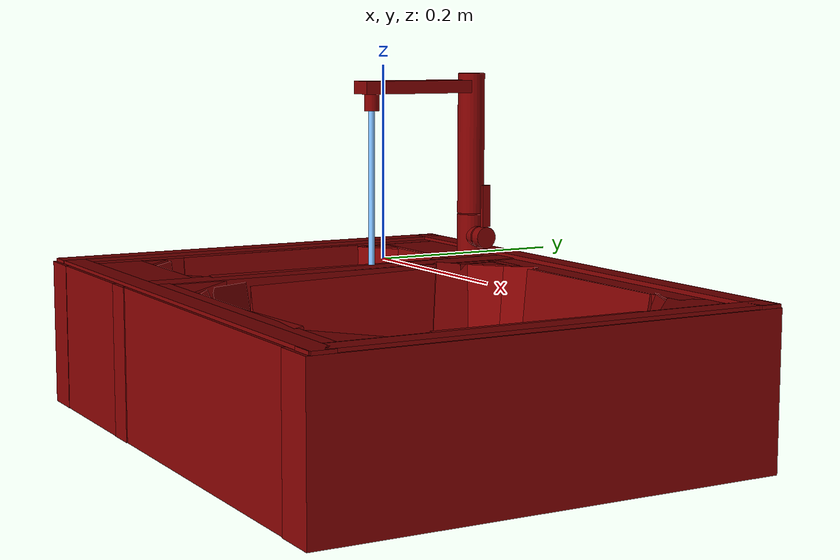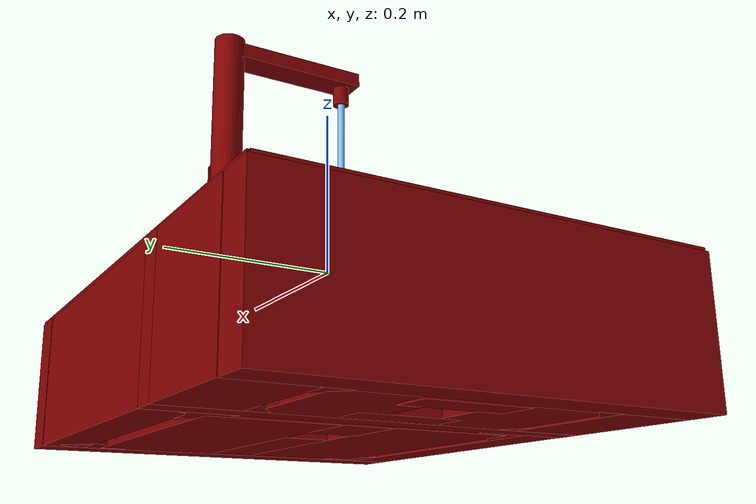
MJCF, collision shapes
<mujoco model="model">
  <compiler angle="radian"/>
  <asset>
    <mesh file="visuals/handle.obj" name="handle_vis"/>
    <mesh file="visuals/Body001.obj" name="Body001_vis"/>
    <mesh file="visuals/Funnel001.obj" name="Funnel001_vis"/>
    <mesh file="visuals/Funnel002.obj" name="Funnel002_vis"/>
    <mesh file="visuals/spout.obj" name="spout_vis"/>
    <texture file="visuals/T_BC001.png" name="Body001_material" type="2d"/>
    <material name="Body001_material" rgba="1 1 1 1.0" texture="Body001_material" shininess="0.4472135901451111" specular="0.7"/>
    <texture file="visuals/T_BC001.png" name="handle_material" type="2d"/>
    <material name="handle_material" rgba="1 1 1 1.0" texture="handle_material" shininess="0.4472135901451111" specular="0.7"/>
    <texture file="visuals/T_BC001.png" name="Funnel001_material" type="2d"/>
    <material name="Funnel001_material" rgba="1 1 1 1.0" texture="Funnel001_material" shininess="0.4472135901451111" specular="0.7"/>
    <texture file="visuals/T_BC001.png" name="Funnel002_material" type="2d"/>
    <material name="Funnel002_material" rgba="1 1 1 1.0" texture="Funnel002_material" shininess="0.4472135901451111" specular="0.7"/>
    <texture file="visuals/T_BC001.png" name="spout_material" type="2d"/>
    <material name="spout_material" rgba="1 1 1 1.0" texture="spout_material" shininess="0.4472135901451111" specular="0.7"/>
  </asset>
  <default>
    <default class="visual">
      <geom conaffinity="0" contype="0" group="1" type="mesh"/>
    </default>
    <default class="collision">
      <geom group="0" rgba="0.5 0 0 0.5"/>
    </default>
    <default class="spawn">
      <geom group="0" rgba="1 1 1 0.5" contype="0" conaffinity="0"/>
      <site group="0" rgba="1 1 1 0.5"/>
    </default>
    <default class="region">
      <geom group="1" conaffinity="0" contype="0" rgba="0 1 0 0"/>
    </default>
  </default>
  <worldbody>
    <body>
      <body name="object">
        <geom mesh="Body001_vis" type="mesh" solimp="0.998 0.998 0.001" solref="0.001 1" density="100" friction="0.95 0.3 0.1" class="visual" material="Body001_material"/>
        <geom class="collision" type="box" pos="-0.304379 -0.000304 -0.106134" size="0.021913282573223114 0.2506723701953888 0.0811813548207283" quat="1.0 0.0 0.0 0.0"/>
        <geom class="collision" type="box" pos="-0.111876 -0.000304 -0.106134" size="0.016419952735304832 0.2506723701953888 0.0811813548207283" quat="1.0 0.0 0.0 0.0"/>
        <geom class="collision" type="box" pos="0.302957 -0.000304 -0.106134" size="0.023097636178135872 0.2506723701953888 0.0811813548207283" quat="1.0 0.0 0.0 0.0"/>
        <geom class="collision" type="box" pos="-0.204967 0.205712 -0.106134" size="0.04517940804362297 0.07693134993314743 0.0811813622713089" quat="0.7071067094802856 0.0 0.0 0.7071068286895752"/>
        <geom class="collision" type="box" pos="-0.204967 -0.206061 -0.106134" size="0.04443860054016113 0.0776364728808403 0.0811813622713089" quat="0.7071067094802856 0.0 0.0 0.7071068286895752"/>
        <geom class="collision" type="box" pos="0.090095 -0.224436 -0.106134" size="0.02550148218870163 0.18988800048828125 0.0811813622713089" quat="0.7071067094802856 0.0 0.0 0.7071068286895752"/>
        <geom class="collision" type="box" pos="0.094487 0.224083 -0.106626" size="0.025845898315310478 0.19207030534744263 0.08068923652172089" quat="0.7071067094802856 0.0 0.0 0.7071068286895752"/>
        <geom class="collision" type="box" pos="-0.204967 0.089244 -0.167381" size="0.05919526889920235 0.0741795226931572 0.019816504791378975" quat="0.7071067094802856 0.0 0.0 0.7071068286895752"/>
        <geom class="collision" type="box" pos="-0.204967 -0.089389 -0.167429" size="0.059131599962711334 0.0741795226931572 0.019864585250616074" quat="0.7071067094802856 0.0 0.0 0.7071068286895752"/>
        <geom class="collision" type="box" pos="-0.258494 0.004606 -0.168118" size="0.05883987620472908 0.021634362637996674 0.02055344544351101" quat="0.7071067094802856 0.0 0.0 0.7071068286895752"/>
        <geom class="collision" type="box" pos="-0.153257 0.004606 -0.167577" size="0.05883987620472908 0.021164773032069206 0.020012594759464264" quat="0.7071067094802856 0.0 0.0 0.7071068286895752"/>
        <geom class="collision" type="box" pos="0.090382 0.105064 -0.167808" size="0.07577254623174667 0.17648708820343018 0.020243074744939804" quat="0.7071067094802856 0.0 0.0 0.7071068286895752"/>
        <geom class="collision" type="box" pos="0.090382 -0.106013 -0.167489" size="0.07656072825193405 0.17648708820343018 0.019924554973840714" quat="0.7071067094802856 0.0 0.0 0.7071068286895752"/>
        <geom class="collision" type="box" pos="0.160317 -0.001614 -0.167396" size="0.031455546617507935 0.10655160248279572 0.019831692799925804" quat="0.7071067094802856 0.0 0.0 0.7071068286895752"/>
        <geom class="collision" type="box" pos="-0.046030 -0.001614 -0.167695" size="0.031455546617507935 0.039754245430231094 0.020130664110183716" quat="0.7071067094802856 0.0 0.0 0.7071068286895752"/>
        <geom class="collision" type="cylinder" pos="-0.123388 0.182869 0.002697" size="0.015378177165985107 0.023764031007885933" quat="1.0 0.0 0.0 0.0"/>
        <geom class="collision" type="cylinder" pos="-0.108897 0.182934 0.001794" size="0.011896234005689621 0.004643584135919809" quat="0.7071014046669006 -0.002766991499811411 0.7071013450622559 0.002766991499811411"/>
        <geom class="collision" type="box" pos="-0.090559 0.172512 -0.106384" size="0.025845898315310478 0.005225156433880329 0.08093113452196121" quat="0.7071067094802856 0.0 0.0 0.7071068286895752"/>
        <geom class="collision" type="box" pos="-0.069393 0.193411 -0.106384" size="0.025845898315310478 0.005225156433880329 0.08093113452196121" quat="1.0 0.0 0.0 5.960464477539063e-08"/>
        <geom class="collision" type="box" pos="-0.059238 0.161474 -0.105100" size="0.025845900177955627 0.005225156433880329 0.07925937324762344" quat="0.9315856695175171 -0.10113897919654846 -0.03768659383058548 0.34712931513786316"/>
        <geom class="collision" type="box" pos="-0.077381 0.133009 -0.103124" size="0.02584589645266533 0.005225156433880329 0.07925937324762344" quat="0.7804167866706848 -0.12432725727558136 -0.024337567389011383 0.6122908592224121"/>
        <geom class="collision" type="box" pos="-0.085546 0.005067 -0.103557" size="0.11396775394678116 0.005225156433880329 0.07925938069820404" quat="0.7045438289642334 -0.0719207376241684 -0.07518203556537628 0.7019922137260437"/>
        <geom class="collision" type="box" pos="0.094780 -0.186623 -0.104684" size="0.11396775394678116 0.005225156433880329 0.07925937324762344" quat="0.005484840366989374 0.010454756207764149 0.08968508243560791 -0.9959002137184143"/>
        <geom class="collision" type="box" pos="-0.072224 -0.135508 -0.107208" size="0.02584589645266533 0.005225156433880329 0.07925937324762344" quat="0.5429361462593079 -0.057337481528520584 -0.08152171224355698 0.833838701248169"/>
        <geom class="collision" type="box" pos="-0.042236 -0.171922 -0.106157" size="0.025845898315310478 0.005225156433880329 0.07925937324762344" quat="0.2774260938167572 -0.04453260824084282 -0.09324575215578079 0.9551737308502197"/>
        <geom class="collision" type="box" pos="0.228654 -0.173251 -0.107208" size="0.02584589645266533 0.005225156433880329 0.07925937324762344" quat="0.20856431126594543 -0.017389820888638496 0.0981375053524971 -0.9729170203208923"/>
        <geom class="collision" type="box" pos="0.258637 -0.140643 -0.106157" size="0.02584589645266533 0.005225156433880329 0.07925937324762344" quat="0.48180389404296875 -0.03473207354545593 0.09732218086719513 -0.8701649904251099"/>
        <geom class="collision" type="box" pos="0.274674 0.005067 -0.103557" size="0.11396776139736176 0.005225156433880329 0.07925938069820404" quat="0.042465563863515854 -0.7042139172554016 -0.7072701454162598 0.04525955766439438"/>
        <geom class="collision" type="box" pos="0.259821 0.141856 -0.107345" size="0.025845900177955627 0.005225156433880329 0.07925937324762344" quat="0.8157275319099426 -0.07961252331733704 0.05996018275618553 -0.5697852373123169"/>
        <geom class="collision" type="box" pos="0.229422 0.174076 -0.106294" size="0.025845900177955627 0.005225156433880329 0.07925937324762344" quat="0.9456391334533691 -0.09174710512161255 0.04754364490509033 -0.30836451053619385"/>
        <geom class="collision" type="box" pos="0.081039 0.187262 -0.105135" size="0.11396776139736176 0.0052251568995416164 0.07925937324762344" quat="0.002029395429417491 -0.0021109217777848244 0.9961948394775391 -0.08710481226444244"/>
        <geom class="collision" type="box" pos="0.270427 0.186051 -0.106626" size="0.025845898315310478 0.04232998192310333 0.08068923652172089" quat="0.9190593957901001 0.0 0.0 0.3941190540790558"/>
        <geom class="collision" type="box" pos="0.262168 -0.190222 -0.106626" size="0.025845900177955627 0.04232998192310333 0.08068923652172089" quat="0.4444805085659027 0.0 0.0 0.8957885503768921"/>
        <geom class="collision" type="box" pos="-0.085656 -0.184257 -0.106626" size="0.025845898315310478 0.04232998192310333 0.08068923652172089" quat="0.9276973605155945 0.0 0.0 0.3733331561088562"/>
        <geom class="collision" type="box" pos="-0.091482 0.189328 -0.106626" size="0.025845900177955627 0.04232998192310333 0.08068923652172089" quat="0.9256194233894348 0.0 -0.0 -0.37845566868782043"/>
        <geom class="collision" type="box" pos="0.213245 0.181738 -0.102114" size="0.02584589645266533 0.0052251568995416164 0.07715897262096405" quat="0.9745601415634155 -0.09655645489692688 0.03680741414427757 -0.1988832950592041"/>
        <geom class="collision" type="box" pos="-0.028992 0.181154 -0.104021" size="0.025845900177955627 0.005225156433880329 0.07925937324762344" quat="0.9735565781593323 -0.09422709792852402 -0.052636709064245224 0.20134100317955017"/>
        <geom class="collision" type="box" pos="-0.207244 0.149444 -0.105003" size="0.04446038976311684 0.005225156433880329 0.07925935834646225" quat="0.002029395429417491 -0.0021109217777848244 0.9961948394775391 -0.08710481226444244"/>
        <geom class="collision" type="box" pos="-0.258622 0.129166 -0.105100" size="0.025845898315310478 0.005225156433880329 0.07925937324762344" quat="0.9061340093612671 -0.10344429314136505 -0.03080013394355774 0.40898874402046204"/>
        <geom class="collision" type="box" pos="-0.151035 0.138564 -0.106431" size="0.025845900177955627 0.005225156433880329 0.07925937324762344" quat="0.9296858310699463 -0.060102034360170364 0.029010016471147537 -0.3622574210166931"/>
        <geom class="collision" type="box" pos="-0.200535 -0.152085 -0.105003" size="0.04446038976311684 0.005225156433880329 0.07925935834646225" quat="0.08711718767881393 -0.9961850047111511 0.004906183574348688 0.0014157724799588323"/>
        <geom class="collision" type="box" pos="-0.148877 -0.132532 -0.105100" size="0.02584589645266533 0.005225156433880329 0.07925937324762344" quat="0.4025959074497223 -0.030070720240473747 0.10365870594978333 -0.9089924097061157"/>
        <geom class="collision" type="box" pos="-0.256586 -0.140414 -0.106431" size="0.025845900177955627 0.005225156433880329 0.07925937324762344" quat="0.3687969446182251 -0.029432643204927444 -0.059896212071180344 0.9271110892295837"/>
        <geom class="collision" type="box" pos="-0.133766 0.005067 -0.103557" size="0.14837190508842468 0.005225186236202717 0.07925985753536224" quat="0.042465563863515854 -0.7042139172554016 -0.7072701454162598 0.04525955766439438"/>
        <geom class="collision" type="box" pos="-0.277001 0.005067 -0.103557" size="0.11396775394678116 0.0052251568995416164 0.07925938069820404" quat="0.7069447636604309 -0.04441684111952782 -0.047575876116752625 0.7042675614356995"/>
        <geom class="collision" type="box" pos="-0.274660 -0.154304 -0.106626" size="0.011584443040192127 0.023624230176210403 0.08068923652172089" quat="0.9276973605155945 0.0 0.0 0.3733331561088562"/>
        <geom class="collision" type="box" pos="-0.134140 -0.156959 -0.106626" size="0.011584443040192127 0.023624230176210403 0.08068923652172089" quat="0.42179039120674133 0.0 0.0 0.9066933989524841"/>
        <geom class="collision" type="box" pos="-0.275678 0.153203 -0.106626" size="0.011584442108869553 0.023624230176210403 0.08068923652172089" quat="0.3680267930030823 0.0 0.0 0.9298151731491089"/>
        <geom class="collision" type="box" pos="-0.141354 0.155858 -0.106626" size="0.011584443040192127 0.023624230176210403 0.08068923652172089" quat="0.8962980508804321 0.0 0.0 0.4434520900249481"/>
        <geom class="collision" type="box" pos="0.001443 0.237160 -0.025704" size="0.3244405686855316 0.01222260482609272 0.004453789442777634" quat="1.0 0.0 0.0 0.0"/>
        <geom class="collision" type="box" pos="0.001443 -0.234191 -0.025704" size="0.3244405686855316 0.01222260482609272 0.004453789442777634" quat="1.0 0.0 0.0 0.0"/>
        <geom class="collision" type="box" pos="0.311455 -0.000167 -0.025704" size="0.24724873900413513 0.01222260482609272 0.004453789442777634" quat="0.7071067094802856 0.0 -0.0 -0.7071068286895752"/>
        <geom class="collision" type="box" pos="-0.312799 -0.000167 -0.025704" size="0.24724873900413513 0.01222260482609272 0.004453789442777634" quat="0.7071067094802856 0.0 -0.0 -0.7071068286895752"/>
        <body name="handle">
          <joint axis="1.0 0.0 0.0" pos="-0.095673 0.182996 0.001894" limited="true" name="handle_joint_hinge_0" type="hinge" range="-0.7853981633974483 0.7853981633974483" damping="1" frictionloss="1" armature=".01" stiffness="0.05"/>
          <joint axis="0.0 1.0 0.0" pos="-0.095673 0.182996 0.001894" limited="true" name="handle_joint_hinge_1" type="hinge" range="0.0 0.17453292519943295" damping="1" frictionloss="1" armature=".01" stiffness="0.05"/>
          <geom mesh="handle_vis" type="mesh" solimp="0.998 0.998 0.001" solref="0.001 1" density="100" friction="0.95 0.3 0.1" class="visual" material="handle_material"/>
          <geom class="collision" type="cylinder" pos="-0.095235 0.183051 0.001600" size="0.012242971919476986 0.005963981617242098" quat="0.7071014046669006 -0.002766991499811411 0.7071013450622559 0.002766991499811411"/>
          <geom class="collision" type="box" pos="-0.091400 0.182999 0.038001" size="0.0020829199347645044 0.005032389424741268 0.023850250989198685" quat="0.9999874830245972 0.0 -0.0 -0.005006327759474516"/>
        </body>
        <body name="Funnel001">
          <joint axis="0.0 0.0 1.0" pos="-0.205050 -0.000000 -0.165481" limited="true" name="Funnel001_joint" range="0.0 0.25" type="slide" damping="1" frictionloss="1" armature=".01" stiffness="0.05"/>
          <geom mesh="Funnel001_vis" type="mesh" solimp="0.998 0.998 0.001" solref="0.001 1" density="100" friction="0.95 0.3 0.1" class="visual" material="Funnel001_material"/>
          <geom class="collision" type="cylinder" pos="-0.204800 -0.000195 -0.162425" size="0.028490740805864334 0.009460891596972942" quat="1.0 0.0 0.0 0.0"/>
        </body>
        <body name="Funnel002">
          <joint axis="0.0 0.0 1.0" pos="0.023934 -0.000000 -0.165481" limited="true" name="Funnel002_joint" range="0.0 0.25" type="slide" damping="1" frictionloss="1" armature=".01" stiffness="0.05"/>
          <geom mesh="Funnel002_vis" type="mesh" solimp="0.998 0.998 0.001" solref="0.001 1" density="100" friction="0.95 0.3 0.1" class="visual" material="Funnel002_material"/>
          <geom class="collision" type="cylinder" pos="0.024025 -0.000195 -0.162425" size="0.028490740805864334 0.009460891596972942" quat="1.0 0.0 0.0 0.0"/>
        </body>
        <body name="spout">
          <joint axis="0.0 0.0 1.0" pos="-0.123289 0.182672 0.107122" limited="true" name="spout_joint" range="-0.7853981633974483 0.7853981633974483" type="hinge" damping="1" frictionloss="1" armature=".01" stiffness="0.05"/>
          <site type="cylinder" rgba="0.5 0.75 1 1" size="0.0034474532585591078 0.15256693959236145" pos="-0.124624 0.053353 -0.001419" name="water"/>
          <geom mesh="spout_vis" type="mesh" solimp="0.998 0.998 0.001" solref="0.001 1" density="100" friction="0.95 0.3 0.1" class="visual" material="spout_material"/>
          <geom class="collision" type="cylinder" pos="-0.123280 0.182705 0.107985" size="0.015337559394538403 0.08002017438411713" quat="0.9449544548988342 0.0 0.0 0.32720187306404114"/>
          <geom class="collision" type="box" pos="-0.124286 0.106922 0.173421" size="0.014858418144285679 0.06735827773809433 0.007122769020497799" quat="0.9999867677688599 0.0 -0.0 -0.005144515074789524"/>
          <geom class="collision" type="cylinder" pos="-0.124514 0.053479 0.156978" size="0.008447862230241299 0.009460891596972942" quat="0.9449544548988342 0.0 0.0 0.32720187306404114"/>
        </body>
        <geom class="region" name="reg_main" type="box" pos="0.0 0.0 -0.10395700000000001" size="0.325305 0.249996 0.082825"/>
        <geom class="region" name="reg_basin_right" type="box" pos="0.09139800000000001 -0.0018129999999999952 -0.08064" size="0.16281500000000002 0.164613 0.047743999999999995"/>
        <geom class="region" name="reg_basin_left" type="box" pos="-0.20615650000000002 -0.001455999999999999 -0.0825175" size="0.06064850000000001 0.143559 0.0496705"/>
      </body>
    </body>
  </worldbody>
  <actuator>
    <motor name="handle_joint_hinge_0_actuator" joint="handle_joint_hinge_0" gear="10"/>
    <motor name="handle_joint_hinge_1_actuator" joint="handle_joint_hinge_1" gear="10"/>
    <motor name="Funnel001_joint_actuator" joint="Funnel001_joint" gear="10"/>
    <motor name="Funnel002_joint_actuator" joint="Funnel002_joint" gear="10"/>
    <motor name="spout_joint_actuator" joint="spout_joint" gear="10"/>
  </actuator>
</mujoco>
